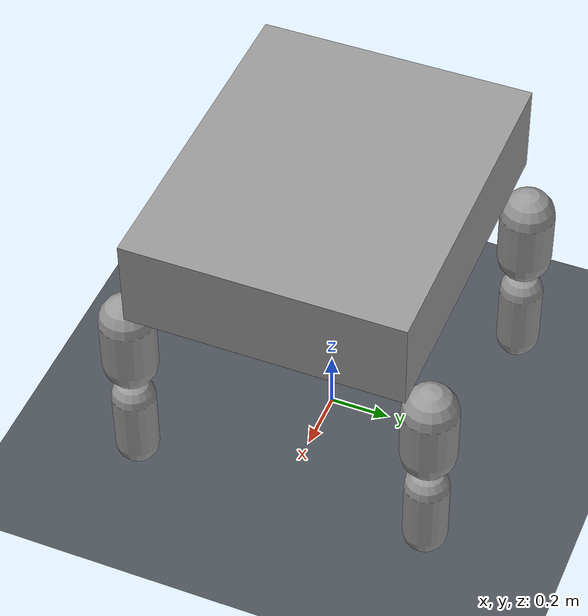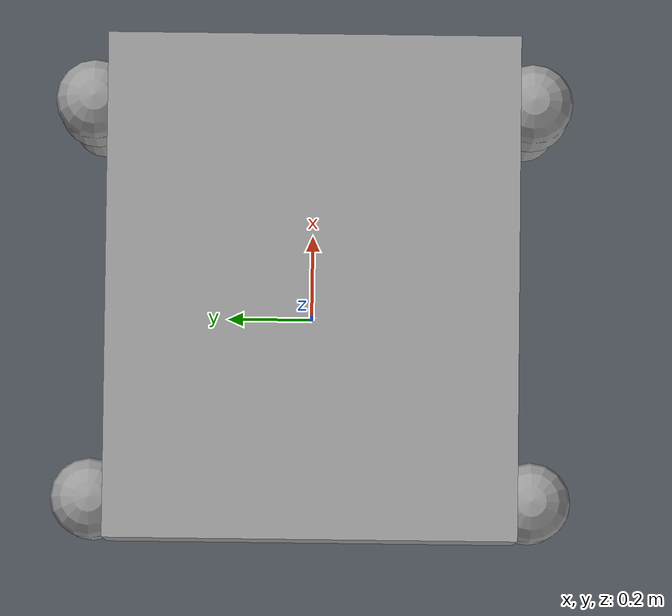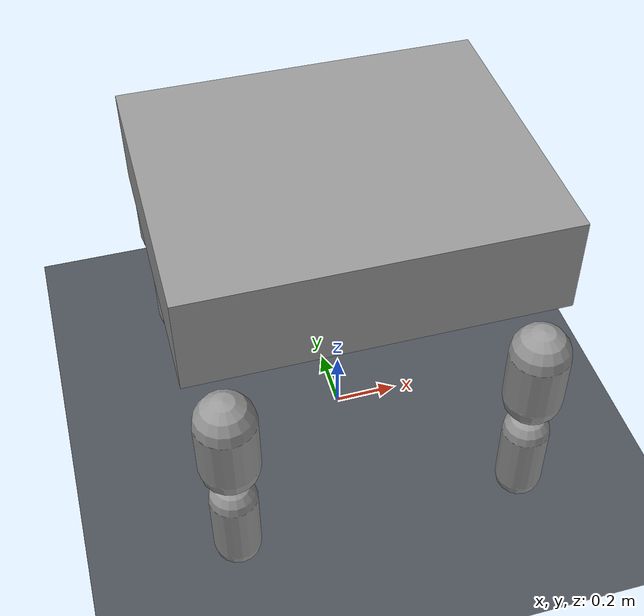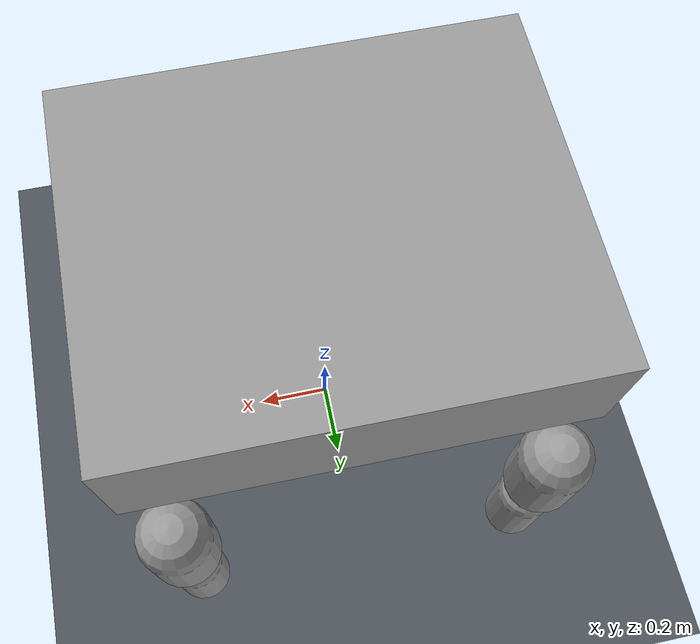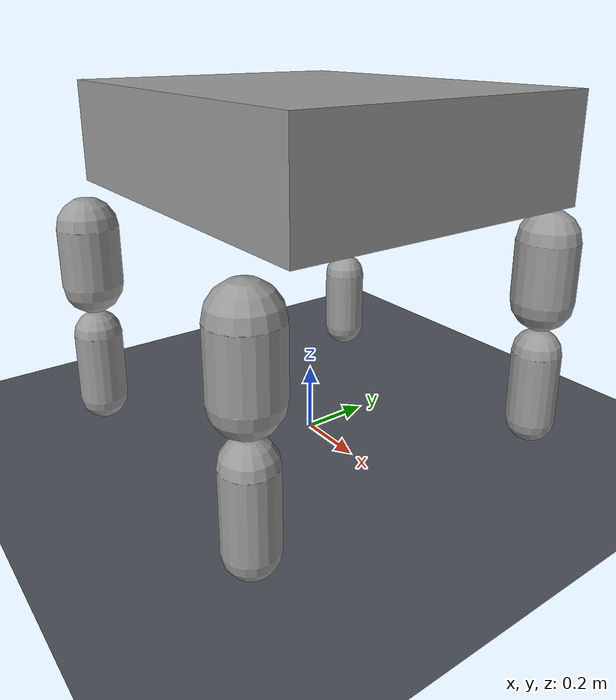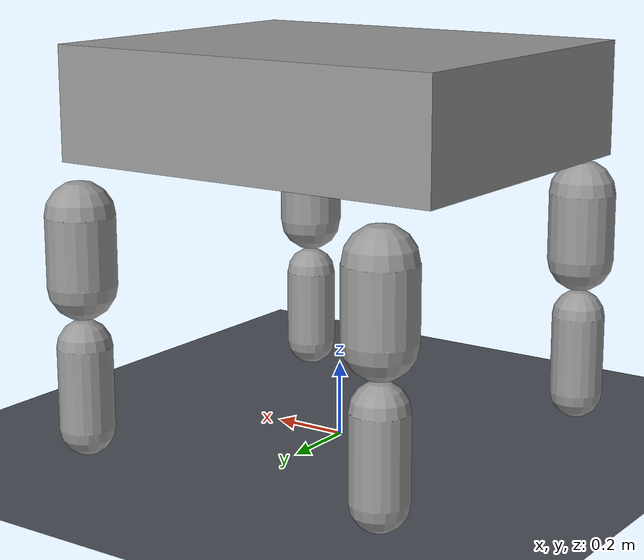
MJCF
<mujoco model="quad">
  <compiler angle="radian" autolimits="true" inertiafromgeom="auto" />
  <option timestep="0.005" gravity="0 0 -9.81" integrator="implicitfast" cone="pyramidal" solver="Newton" iterations="10" ls_iterations="8" />
  <default>
    <geom condim="3" friction="0.9 0.005 0.0001" solref="0.01 1" contype="1" conaffinity="1" rgba="0.6 0.6 0.6 1" />
    <joint type="hinge" limited="true" armature="0" frictionloss="0" solreflimit="0.01 1" />
  </default>
  <worldbody>
    <geom name="floor" type="plane" size="50 50 0.1" friction="0.9 0.005 0.0001" solref="0.03 1" rgba="0.3 0.32 0.35 1" priority="1" />
    <body name="Quad_v01" pos="0 0 0.9">
      <freejoint name="root" />
      <geom name="Quad_v01_geom" type="box" size="0.55 0.45 0.15" pos="0 0 0" mass="60" />
      <body name="Upper_-1_-1" pos="-0.451 0.495 -0.36">
        <joint name="Upper_-1_-1" pos="0 0 0.18" axis="0 1 0" range="-0.785398 0.785398" damping="100" />
        <geom name="Upper_-1_-1_geom" type="capsule" size="0.09" fromto="0 0 -0.09 0 0 0.09" mass="4" />
        <body name="Lower_-1_-1" pos="0 0 -0.36">
          <joint name="Lower_-1_-1" pos="0 0 0.18" axis="0 1 0" range="-1.0472 1.0472" damping="100" />
          <geom name="Lower_-1_-1_geom" type="capsule" size="0.072" fromto="0 0 -0.108 0 0 0.108" mass="3.5" />
        </body>
      </body>
      <body name="Upper_-1_1" pos="0.451 0.495 -0.36">
        <joint name="Upper_-1_1" pos="0 0 0.18" axis="0 1 0" range="-0.785398 0.785398" damping="100" />
        <geom name="Upper_-1_1_geom" type="capsule" size="0.09" fromto="0 0 -0.09 0 0 0.09" mass="4" />
        <body name="Lower_-1_1" pos="0 0 -0.36">
          <joint name="Lower_-1_1" pos="0 0 0.18" axis="0 1 0" range="-1.0472 1.0472" damping="100" />
          <geom name="Lower_-1_1_geom" type="capsule" size="0.072" fromto="0 0 -0.108 0 0 0.108" mass="3.5" />
        </body>
      </body>
      <body name="Upper_1_-1" pos="-0.451 -0.495 -0.36">
        <joint name="Upper_1_-1" pos="0 0 0.18" axis="0 1 0" range="-0.785398 0.785398" damping="100" />
        <geom name="Upper_1_-1_geom" type="capsule" size="0.09" fromto="0 0 -0.09 0 0 0.09" mass="4" />
        <body name="Lower_1_-1" pos="0 0 -0.36">
          <joint name="Lower_1_-1" pos="0 0 0.18" axis="0 1 0" range="-1.0472 1.0472" damping="100" />
          <geom name="Lower_1_-1_geom" type="capsule" size="0.072" fromto="0 0 -0.108 0 0 0.108" mass="3.5" />
        </body>
      </body>
      <body name="Upper_1_1" pos="0.451 -0.495 -0.36">
        <joint name="Upper_1_1" pos="0 0 0.18" axis="0 1 0" range="-0.785398 0.785398" damping="100" />
        <geom name="Upper_1_1_geom" type="capsule" size="0.09" fromto="0 0 -0.09 0 0 0.09" mass="4" />
        <body name="Lower_1_1" pos="0 0 -0.36">
          <joint name="Lower_1_1" pos="0 0 0.18" axis="0 1 0" range="-1.0472 1.0472" damping="100" />
          <geom name="Lower_1_1_geom" type="capsule" size="0.072" fromto="0 0 -0.108 0 0 0.108" mass="3.5" />
        </body>
      </body>
    </body>
  </worldbody>
  <actuator>
    <position name="Upper_-1_-1" joint="Upper_-1_-1" kp="1500" forcerange="-300 300" ctrlrange="-0.785398 0.785398" />
    <position name="Lower_-1_-1" joint="Lower_-1_-1" kp="1500" forcerange="-300 300" ctrlrange="-0.785398 0.785398" />
    <position name="Upper_-1_1" joint="Upper_-1_1" kp="1500" forcerange="-300 300" ctrlrange="-0.785398 0.785398" />
    <position name="Lower_-1_1" joint="Lower_-1_1" kp="1500" forcerange="-300 300" ctrlrange="-0.785398 0.785398" />
    <position name="Upper_1_-1" joint="Upper_1_-1" kp="1500" forcerange="-300 300" ctrlrange="-0.785398 0.785398" />
    <position name="Lower_1_-1" joint="Lower_1_-1" kp="1500" forcerange="-300 300" ctrlrange="-0.785398 0.785398" />
    <position name="Upper_1_1" joint="Upper_1_1" kp="1500" forcerange="-300 300" ctrlrange="-0.785398 0.785398" />
    <position name="Lower_1_1" joint="Lower_1_1" kp="1500" forcerange="-300 300" ctrlrange="-0.785398 0.785398" />
  </actuator>
  <keyframe>
    <key name="spawn" qpos="0 0 0.92 1 0 0 0 0 0 0 0 0 0 0 0" ctrl="0 0 0 0 0 0 0 0" />
    <key name="rest" qpos="0 0 0.9 1 0 0 0 0 0 0 0 0 0 0 0" ctrl="0 0 0 0 0 0 0 0" />
  </keyframe>
</mujoco>
